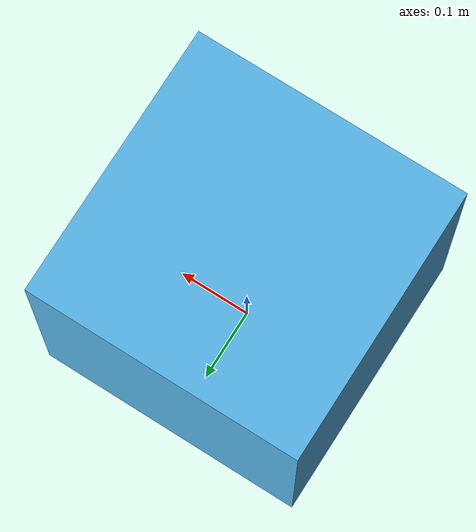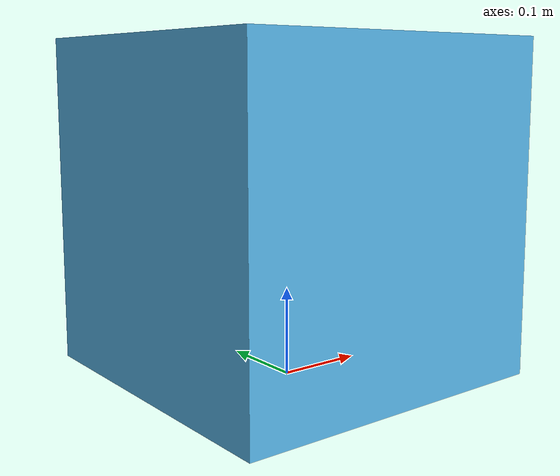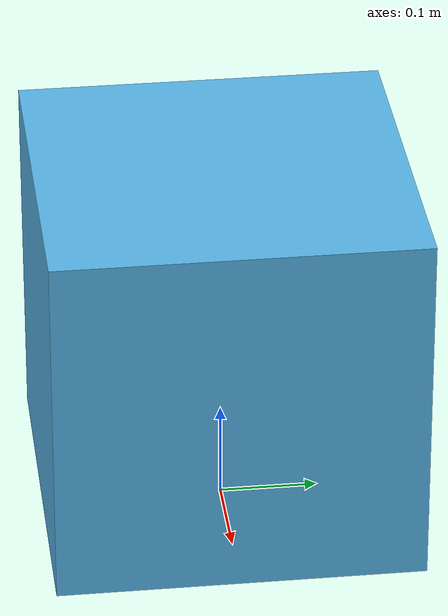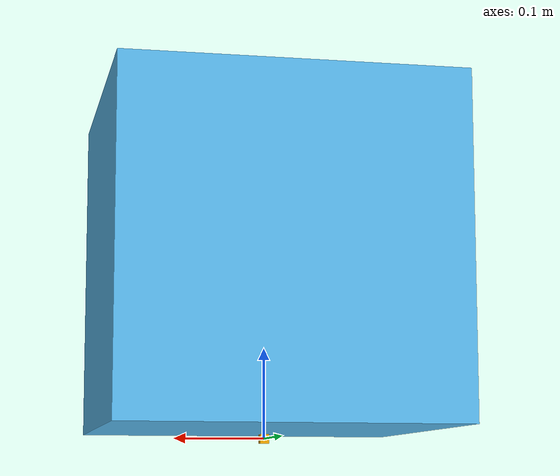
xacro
<?xml version="1.0" ?>
<robot name="body"
    xmlns:xacro="http://ros.org/wiki/xacro">

    <link name="base_link">
        <visual>
            <geometry>
                <box size="0.01 0.01 0.01" />
            </geometry>
        </visual>
        <collision>
            <geometry>
                <box size="0.01 0.01 0.01" />
            </geometry>
        </collision>
        <inertial>
            <origin xyz="0 0 0" rpy="0 0 0" />
            <mass value="0.1" />
            <inertia ixx="0.0001" ixy="0" ixz="0" iyx="0" iyy="0.0001" iyz="0" izx="0" izy="0" izz="0.0001" />
        </inertial>
    </link>

    <xacro:property name="b_m" value="10"/>
    <xacro:property name="b_m2" value="${b_m/12}"/>
    <!--for calculation of inertia-->
    <xacro:property name="b_w" value="0.37"/>
    <xacro:property name="b_h" value="0.37"/>
    <xacro:property name="b_d" value="0.37"/>

    <link name="body">
        <visual>
            <geometry>
                <box size="${b_d} ${b_w} ${b_h}" />
            </geometry>
        </visual>
        <collision>
            <geometry>
                <box size="${b_d*0.95} ${b_w*0.95} ${b_h*0.95}" />
            </geometry>
        </collision>
        <inertial>
            <origin xyz="0 0 0" rpy="0 0 0" />
            <mass value="${b_m}" />
            <inertia ixx="${b_m2*(b_h*b_h+b_w*b_w)}" ixy="0" ixz="0" iyx="0" iyy="${b_m2*(b_h*b_h+b_d*b_d)}" iyz="0" izx="0" izy="0" izz="${b_m2*(b_w*b_w+b_d*b_d)}" />
        </inertial>
    </link>

    <joint name="base_body_joint" type="revolute">
        <parent link="base_link" />
        <child link="body" />
        <origin xyz="0 0 0.195" rpy="0 0 0" />
        <limit lower="0" upper="0" effort="0" velocity="0" />
    </joint>
</robot>
